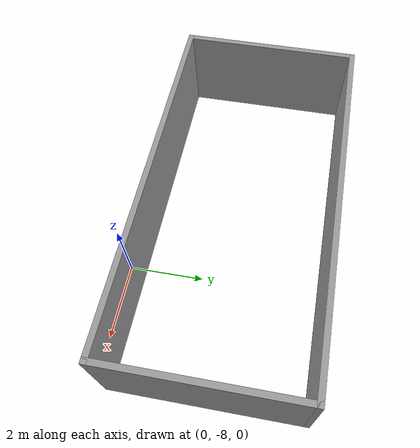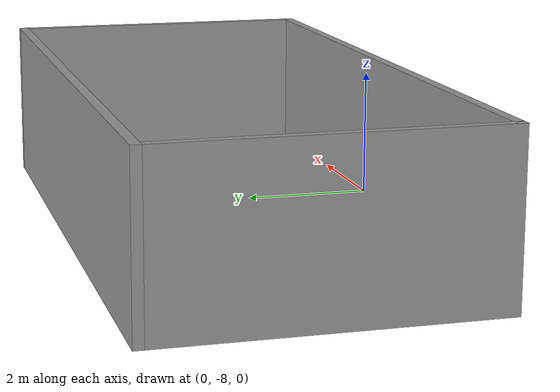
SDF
<?xml version='1.0'?>
<sdf version='1.7'>
  <model name='rectangle'>
    <pose>-1.74466 -3.85115 0 0 -0 0</pose>
    <link name='Wall_5'>
      <collision name='Wall_5_Collision'>
        <geometry>
          <box>
            <size>5 0.15 2.5</size>
          </box>
        </geometry>
        <pose>0 0 1.25 0 -0 0</pose>
      </collision>
      <visual name='Wall_5_Visual'>
        <pose>0 0 1.25 0 -0 0</pose>
        <geometry>
          <box>
            <size>5 0.15 2.5</size>
          </box>
        </geometry>
        <material>
          <script>
            <uri>file://media/materials/scripts/gazebo.material</uri>
            <name>Gazebo/Grey</name>
          </script>
          <ambient>1 1 1 1</ambient>
        </material>
        <meta>
          <layer>0</layer>
        </meta>
      </visual>
      <pose>-4.925 -1.35115 0 0 -0 -1.5708</pose>
    </link>
    <link name='Wall_6'>
      <collision name='Wall_6_Collision'>
        <geometry>
          <box>
            <size>10 0.15 2.5</size>
          </box>
        </geometry>
        <pose>0 0 1.25 0 -0 0</pose>
      </collision>
      <visual name='Wall_6_Visual'>
        <pose>0 0 1.25 0 -0 0</pose>
        <geometry>
          <box>
            <size>10 0.15 2.5</size>
          </box>
        </geometry>
        <material>
          <script>
            <uri>file://media/materials/scripts/gazebo.material</uri>
            <name>Gazebo/Grey</name>
          </script>
          <ambient>1 1 1 1</ambient>
        </material>
        <meta>
          <layer>0</layer>
        </meta>
      </visual>
      <pose>-0 -3.77615 0 0 -0 0</pose>
    </link>
    <link name='Wall_7'>
      <collision name='Wall_7_Collision'>
        <geometry>
          <box>
            <size>5 0.15 2.5</size>
          </box>
        </geometry>
        <pose>0 0 1.25 0 -0 0</pose>
      </collision>
      <visual name='Wall_7_Visual'>
        <pose>0 0 1.25 0 -0 0</pose>
        <geometry>
          <box>
            <size>5 0.15 2.5</size>
          </box>
        </geometry>
        <material>
          <script>
            <uri>file://media/materials/scripts/gazebo.material</uri>
            <name>Gazebo/Grey</name>
          </script>
          <ambient>1 1 1 1</ambient>
        </material>
        <meta>
          <layer>0</layer>
        </meta>
      </visual>
      <pose>4.925 -1.35115 0 0 -0 1.5708</pose>
    </link>
    <link name='Wall_8'>
      <collision name='Wall_8_Collision'>
        <geometry>
          <box>
            <size>10 0.15 2.5</size>
          </box>
        </geometry>
        <pose>0 0 1.25 0 -0 0</pose>
      </collision>
      <visual name='Wall_8_Visual'>
        <pose>0 0 1.25 0 -0 0</pose>
        <geometry>
          <box>
            <size>10 0.15 2.5</size>
          </box>
        </geometry>
        <material>
          <script>
            <uri>file://media/materials/scripts/gazebo.material</uri>
            <name>Gazebo/Grey</name>
          </script>
          <ambient>1 1 1 1</ambient>
        </material>
        <meta>
          <layer>0</layer>
        </meta>
      </visual>
      <pose>-0 1.07385 0 0 -0 3.14159</pose>
    </link>
    <static>1</static>
  </model>
</sdf>
